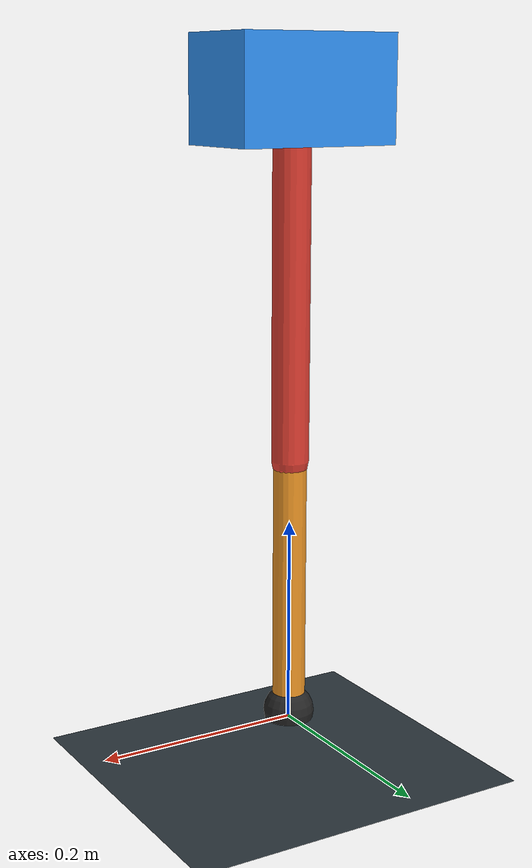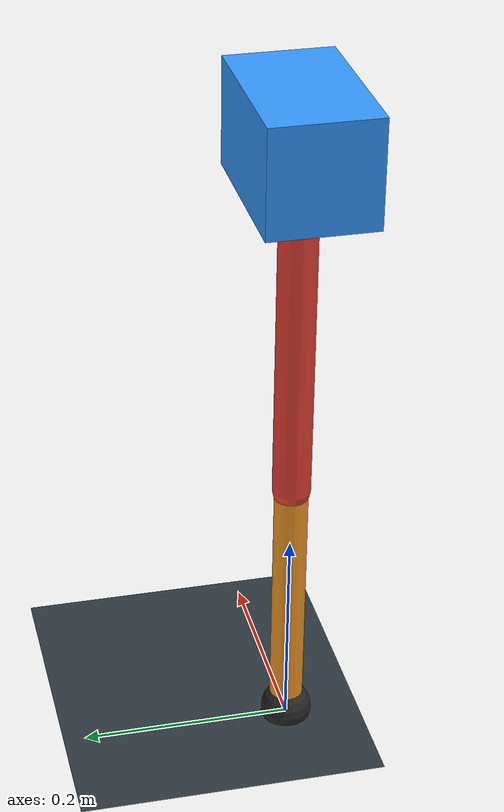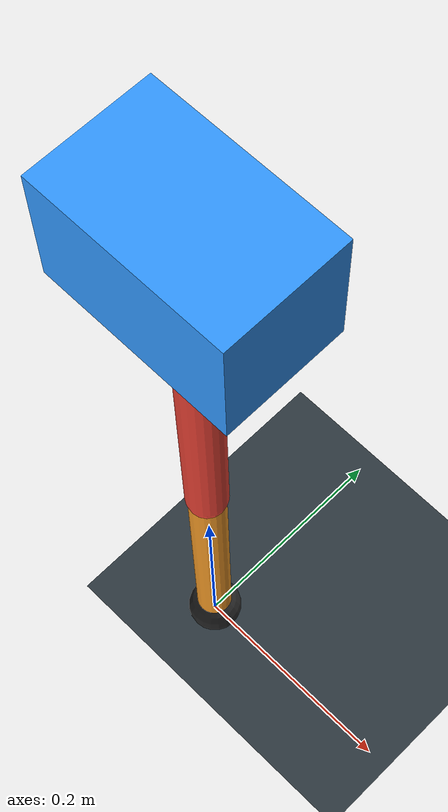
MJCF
<mujoco model="single_axis_two_bar">
  <compiler angle="radian" inertiafromgeom="true"/>
  <option timestep="0.001" integrator="implicitfast" gravity="0 0 -9.81"/>
  <default>
    <joint damping="0.08"/>
    <geom friction="1.2 0.01 0.0001" condim="3"/>
  </default>
  <worldbody>
    <geom name="floor" type="plane" size="5 5 0.1" rgba="0.18 0.22 0.25 1"/>
    <body name="carriage" pos="0 0 0.6086689400514641">
      <joint name="pole_slide" type="slide" axis="0 0 1"/>
      <geom name="payload" type="box" size="0.08 0.05 0.05" mass="2.574490938883648" rgba="0.2 0.6 1 1"/>
      <body name="thigh" pos="0 0 0">
        <joint name="hip" type="hinge" axis="0 1 0"/>
        <geom name="thigh_link" type="capsule" fromto="0 0 0 0 0 -0.3477014551925987" size="0.018" mass="0.2477418812940944" rgba="0.9 0.25 0.2 1"/>
        <body name="shank" pos="0 0 -0.3477014551925987">
          <joint name="knee" type="hinge" axis="0 1 0"/>
          <geom name="shank_link" type="capsule" fromto="0 0 0 0 0 -0.25401910156148794" size="0.016" mass="0.1809919664288429" rgba="0.95 0.6 0.15 1"/>
          <geom name="foot" type="sphere" pos="0 0 -0.25401910156148794" size="0.025" mass="0.03" rgba="0.15 0.15 0.15 1"/>
          <site name="toe" pos="0 0 -0.25401910156148794" size="0.008"/>
        </body>
      </body>
    </body>
  </worldbody>
  <actuator>
    <motor name="hip_motor" joint="hip" ctrlrange="-33.61706286756122 33.61706286756122"/>
    <motor name="knee_motor" joint="knee" ctrlrange="-105.0042869917076 105.0042869917076"/>
  </actuator>
</mujoco>
